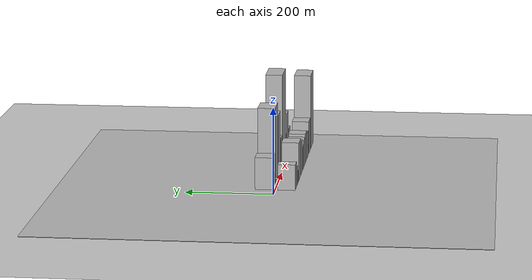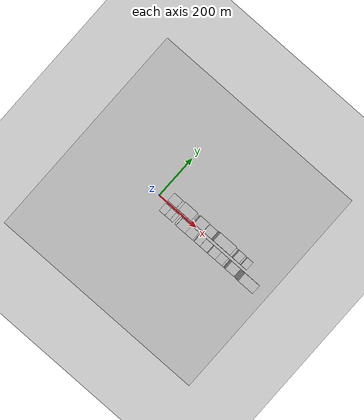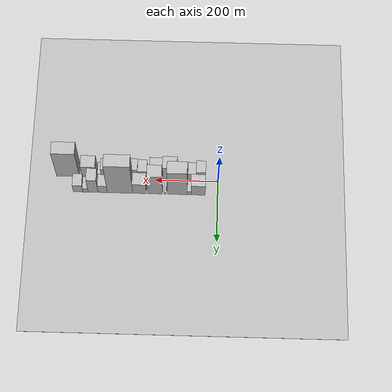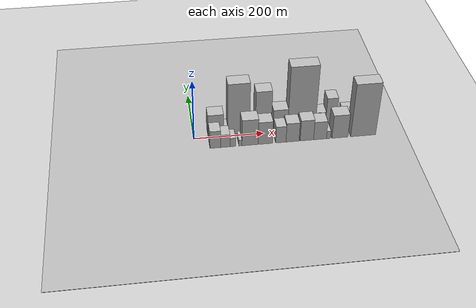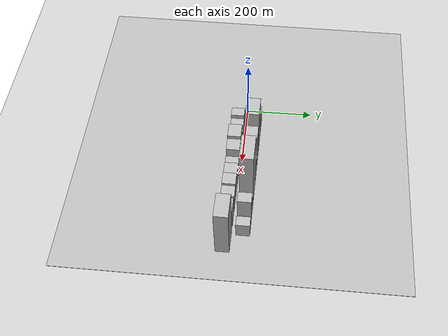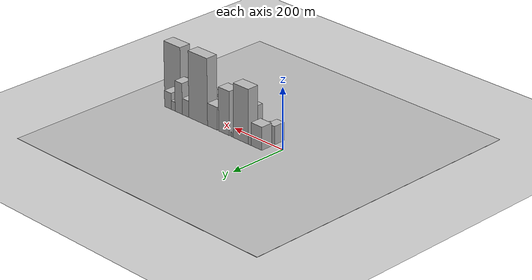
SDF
<?xml version="1.0" encoding="utf-8"?>

<sdf version="1.6">

   <world name="default">

      <gui fullscreen="0">

         <camera name="user_camera">

            <pose>-15 0 4.57585 0 0 0</pose>

            <view_controller>orbit</view_controller>

         </camera>

      </gui>

      <scene>

         <sky>

           <clouds>

             <speed>12</speed>

           </clouds>

         </sky>

         <ambient>0.4 0.4 0.4 1</ambient>

         <background>0.7 0.7 0.7 1</background>

         <shadows>1</shadows>

      </scene>

      <gravity>0 0 -9.8066</gravity>

      <magnetic_field>6e-06 2.3e-05 -4.2e-05</magnetic_field>

      <physics default="0" name="default_physics" type="ode">

         <ode>

            <solver>

               <type>quick</type>

               <iters>10</iters>

               <sor>1.0</sor>

               <use_dynamic_moi_rescaling>0</use_dynamic_moi_rescaling>

            </solver>

            <constraints>

               <cfm>0</cfm>

               <erp>0.2</erp>

               <contact_max_correcting_vel>100</contact_max_correcting_vel>

               <contact_surface_layer>0.001</contact_surface_layer>

            </constraints>

         </ode>

         <max_step_size>0.004</max_step_size>

         <real_time_factor>1</real_time_factor>

         <real_time_update_rate>250</real_time_update_rate>

      </physics>

      <light name="sun" type="directional">

         <cast_shadows>1</cast_shadows>

         <pose>0 0 10 0 0 0</pose>

         <diffuse>0.8 0.8 0.8 1</diffuse>

         <specular>0.2 0.2 0.2 1</specular>

         <attenuation>

            <range>1000</range>

            <constant>0.9</constant>

            <linear>0.01</linear>

            <quadratic>0.001</quadratic>

         </attenuation>

         <direction>-0.5 0.1 -0.9</direction>

      </light>

      <include>

         <name>ground_plane_1</name>

         <uri>model://HANNAS_ground_plane</uri>

         <pose>0 0 0  0 0 0</pose>

      </include>

      <include>

         <name>ground_plane_2</name>

         <uri>model://HANNAS_ground_plane</uri>

         <pose>100 0 0  0 0 0</pose>

      </include>

      <model name="building_1">

         <static>1</static>

         <pose frame="">62.4932 26.0000 0 0.000000 0.000000 1.570796</pose>

         <link name="link">

            <pose frame="">0 0 37.50 0 0 0</pose>

            <collision name="collision">

               <geometry>

                  <box>

                     <size>40.0000 44.9864 75.0000</size>

                  </box>

               </geometry>

               <max_contacts>10</max_contacts>

               <surface>

                  <contact>

                     <ode/>

                  </contact>

                  <bounce/>

                  <friction>

                     <torsional>

                        <ode/>

                     </torsional>

                     <ode/>

                  </friction>

               </surface>

            </collision>

            <visual name="visual">

               <cast_shadows>0</cast_shadows>

               <geometry>

                  <box>

                     <size>40.0000 44.9864 75.0000</size>

                  </box>

               </geometry>

               <material>

                  <script>

                     <uri>model://HANNAS_wall/materials/scripts</uri>

                     <uri>model://HANNAS_wall/materials/textures</uri>

                     <name>vrc/HANNAS_wall</name>

                  </script>

               </material>

            </visual>

            <self_collide>0</self_collide>

            <enable_wind>0</enable_wind>

            <kinematic>0</kinematic>

         </link>

      </model>

      <model name="building_2">

         <static>1</static>

         <pose frame="">90.9111 26.0000 0 0.000000 0.000000 1.570796</pose>

         <link name="link">

            <pose frame="">0 0 13.50 0 0 0</pose>

            <collision name="collision">

               <geometry>

                  <box>

                     <size>40.0000 11.8492 27.0000</size>

                  </box>

               </geometry>

               <max_contacts>10</max_contacts>

               <surface>

                  <contact>

                     <ode/>

                  </contact>

                  <bounce/>

                  <friction>

                     <torsional>

                        <ode/>

                     </torsional>

                     <ode/>

                  </friction>

               </surface>

            </collision>

            <visual name="visual">

               <cast_shadows>0</cast_shadows>

               <geometry>

                  <box>

                     <size>40.0000 11.8492 27.0000</size>

                  </box>

               </geometry>

               <material>

                  <script>

                     <uri>model://HANNAS_wall/materials/scripts</uri>

                     <uri>model://HANNAS_wall/materials/textures</uri>

                     <name>vrc/HANNAS_wall</name>

                  </script>

               </material>

            </visual>

            <self_collide>0</self_collide>

            <enable_wind>0</enable_wind>

            <kinematic>0</kinematic>

         </link>

      </model>

      <model name="building_3">

         <static>1</static>

         <pose frame="">127.9426 26.0000 0 0.000000 0.000000 1.570796</pose>

         <link name="link">

            <pose frame="">0 0 88.50 0 0 0</pose>

            <collision name="collision">

               <geometry>

                  <box>

                     <size>40.0000 62.2137 177.0000</size>

                  </box>

               </geometry>

               <max_contacts>10</max_contacts>

               <surface>

                  <contact>

                     <ode/>

                  </contact>

                  <bounce/>

                  <friction>

                     <torsional>

                        <ode/>

                     </torsional>

                     <ode/>

                  </friction>

               </surface>

            </collision>

            <visual name="visual">

               <cast_shadows>0</cast_shadows>

               <geometry>

                  <box>

                     <size>40.0000 62.2137 177.0000</size>

                  </box>

               </geometry>

               <material>

                  <script>

                     <uri>model://HANNAS_wall/materials/scripts</uri>

                     <uri>model://HANNAS_wall/materials/textures</uri>

                     <name>vrc/HANNAS_wall</name>

                  </script>

               </material>

            </visual>

            <self_collide>0</self_collide>

            <enable_wind>0</enable_wind>

            <kinematic>0</kinematic>

         </link>

      </model>

      <model name="building_4">

         <static>1</static>

         <pose frame="">166.2386 26.0000 0 0.000000 0.000000 1.570796</pose>

         <link name="link">

            <pose frame="">0 0 7.50 0 0 0</pose>

            <collision name="collision">

               <geometry>

                  <box>

                     <size>40.0000 6.3785 15.0000</size>

                  </box>

               </geometry>

               <max_contacts>10</max_contacts>

               <surface>

                  <contact>

                     <ode/>

                  </contact>

                  <bounce/>

                  <friction>

                     <torsional>

                        <ode/>

                     </torsional>

                     <ode/>

                  </friction>

               </surface>

            </collision>

            <visual name="visual">

               <cast_shadows>0</cast_shadows>

               <geometry>

                  <box>

                     <size>40.0000 6.3785 15.0000</size>

                  </box>

               </geometry>

               <material>

                  <script>

                     <uri>model://HANNAS_wall/materials/scripts</uri>

                     <uri>model://HANNAS_wall/materials/textures</uri>

                     <name>vrc/HANNAS_wall</name>

                  </script>

               </material>

            </visual>

            <self_collide>0</self_collide>

            <enable_wind>0</enable_wind>

            <kinematic>0</kinematic>

         </link>

      </model>

      <model name="building_5">

         <static>1</static>

         <pose frame="">198.3832 26.0000 0 0.000000 0.000000 1.570796</pose>

         <link name="link">

            <pose frame="">0 0 72.00 0 0 0</pose>

            <collision name="collision">

               <geometry>

                  <box>

                     <size>40.0000 45.9106 144.0000</size>

                  </box>

               </geometry>

               <max_contacts>10</max_contacts>

               <surface>

                  <contact>

                     <ode/>

                  </contact>

                  <bounce/>

                  <friction>

                     <torsional>

                        <ode/>

                     </torsional>

                     <ode/>

                  </friction>

               </surface>

            </collision>

            <visual name="visual">

               <cast_shadows>0</cast_shadows>

               <geometry>

                  <box>

                     <size>40.0000 45.9106 144.0000</size>

                  </box>

               </geometry>

               <material>

                  <script>

                     <uri>model://HANNAS_wall/materials/scripts</uri>

                     <uri>model://HANNAS_wall/materials/textures</uri>

                     <name>vrc/HANNAS_wall</name>

                  </script>

               </material>

            </visual>

            <self_collide>0</self_collide>

            <enable_wind>0</enable_wind>

            <kinematic>0</kinematic>

         </link>

      </model>

      <model name="building_6">

         <static>1</static>

         <pose frame="">247.6687 26.0000 0 0.000000 0.000000 1.570796</pose>

         <link name="link">

            <pose frame="">0 0 37.50 0 0 0</pose>

            <collision name="collision">

               <geometry>

                  <box>

                     <size>40.0000 42.6604 75.0000</size>

                  </box>

               </geometry>

               <max_contacts>10</max_contacts>

               <surface>

                  <contact>

                     <ode/>

                  </contact>

                  <bounce/>

                  <friction>

                     <torsional>

                        <ode/>

                     </torsional>

                     <ode/>

                  </friction>

               </surface>

            </collision>

            <visual name="visual">

               <cast_shadows>0</cast_shadows>

               <geometry>

                  <box>

                     <size>40.0000 42.6604 75.0000</size>

                  </box>

               </geometry>

               <material>

                  <script>

                     <uri>model://HANNAS_wall/materials/scripts</uri>

                     <uri>model://HANNAS_wall/materials/textures</uri>

                     <name>vrc/HANNAS_wall</name>

                  </script>

               </material>

            </visual>

            <self_collide>0</self_collide>

            <enable_wind>0</enable_wind>

            <kinematic>0</kinematic>

         </link>

      </model>

      <model name="building_7">

         <static>1</static>

         <pose frame="">309.2730 26.0000 0 0.000000 0.000000 1.570796</pose>

         <link name="link">

            <pose frame="">0 0 109.50 0 0 0</pose>

            <collision name="collision">

               <geometry>

                  <box>

                     <size>40.0000 80.5481 219.0000</size>

                  </box>

               </geometry>

               <max_contacts>10</max_contacts>

               <surface>

                  <contact>

                     <ode/>

                  </contact>

                  <bounce/>

                  <friction>

                     <torsional>

                        <ode/>

                     </torsional>

                     <ode/>

                  </friction>

               </surface>

            </collision>

            <visual name="visual">

               <cast_shadows>0</cast_shadows>

               <geometry>

                  <box>

                     <size>40.0000 80.5481 219.0000</size>

                  </box>

               </geometry>

               <material>

                  <script>

                     <uri>model://HANNAS_wall/materials/scripts</uri>

                     <uri>model://HANNAS_wall/materials/textures</uri>

                     <name>vrc/HANNAS_wall</name>

                  </script>

               </material>

            </visual>

            <self_collide>0</self_collide>

            <enable_wind>0</enable_wind>

            <kinematic>0</kinematic>

         </link>

      </model>

      <model name="building_8">

         <static>1</static>

         <pose frame="">364.0394 26.0000 0 0.000000 0.000000 1.570796</pose>

         <link name="link">

            <pose frame="">0 0 27.00 0 0 0</pose>

            <collision name="collision">

               <geometry>

                  <box>

                     <size>40.0000 28.9847 54.0000</size>

                  </box>

               </geometry>

               <max_contacts>10</max_contacts>

               <surface>

                  <contact>

                     <ode/>

                  </contact>

                  <bounce/>

                  <friction>

                     <torsional>

                        <ode/>

                     </torsional>

                     <ode/>

                  </friction>

               </surface>

            </collision>

            <visual name="visual">

               <cast_shadows>0</cast_shadows>

               <geometry>

                  <box>

                     <size>40.0000 28.9847 54.0000</size>

                  </box>

               </geometry>

               <material>

                  <script>

                     <uri>model://HANNAS_wall/materials/scripts</uri>

                     <uri>model://HANNAS_wall/materials/textures</uri>

                     <name>vrc/HANNAS_wall</name>

                  </script>

               </material>

            </visual>

            <self_collide>0</self_collide>

            <enable_wind>0</enable_wind>

            <kinematic>0</kinematic>

         </link>

      </model>

      <model name="building_9">

         <static>1</static>

         <pose frame="">394.4013 26.0000 0 0.000000 0.000000 1.570796</pose>

         <link name="link">

            <pose frame="">0 0 51.00 0 0 0</pose>

            <collision name="collision">

               <geometry>

                  <box>

                     <size>40.0000 31.7392 102.0000</size>

                  </box>

               </geometry>

               <max_contacts>10</max_contacts>

               <surface>

                  <contact>

                     <ode/>

                  </contact>

                  <bounce/>

                  <friction>

                     <torsional>

                        <ode/>

                     </torsional>

                     <ode/>

                  </friction>

               </surface>

            </collision>

            <visual name="visual">

               <cast_shadows>0</cast_shadows>

               <geometry>

                  <box>

                     <size>40.0000 31.7392 102.0000</size>

                  </box>

               </geometry>

               <material>

                  <script>

                     <uri>model://HANNAS_wall/materials/scripts</uri>

                     <uri>model://HANNAS_wall/materials/textures</uri>

                     <name>vrc/HANNAS_wall</name>

                  </script>

               </material>

            </visual>

            <self_collide>0</self_collide>

            <enable_wind>0</enable_wind>

            <kinematic>0</kinematic>

         </link>

      </model>

      <model name="building_10">

         <static>1</static>

         <pose frame="">418.6257 26.0000 0 0.000000 0.000000 1.570796</pose>

         <link name="link">

            <pose frame="">0 0 15.00 0 0 0</pose>

            <collision name="collision">

               <geometry>

                  <box>

                     <size>40.0000 16.7096 30.0000</size>

                  </box>

               </geometry>

               <max_contacts>10</max_contacts>

               <surface>

                  <contact>

                     <ode/>

                  </contact>

                  <bounce/>

                  <friction>

                     <torsional>

                        <ode/>

                     </torsional>

                     <ode/>

                  </friction>

               </surface>

            </collision>

            <visual name="visual">

               <cast_shadows>0</cast_shadows>

               <geometry>

                  <box>

                     <size>40.0000 16.7096 30.0000</size>

                  </box>

               </geometry>

               <material>

                  <script>

                     <uri>model://HANNAS_wall/materials/scripts</uri>

                     <uri>model://HANNAS_wall/materials/textures</uri>

                     <name>vrc/HANNAS_wall</name>

                  </script>

               </material>

            </visual>

            <self_collide>0</self_collide>

            <enable_wind>0</enable_wind>

            <kinematic>0</kinematic>

         </link>

      </model>

      <model name="building_11">

         <static>1</static>

         <pose frame="">441.9479 26.0000 0 0.000000 0.000000 1.570796</pose>

         <link name="link">

            <pose frame="">0 0 27.00 0 0 0</pose>

            <collision name="collision">

               <geometry>

                  <box>

                     <size>40.0000 29.9348 54.0000</size>

                  </box>

               </geometry>

               <max_contacts>10</max_contacts>

               <surface>

                  <contact>

                     <ode/>

                  </contact>

                  <bounce/>

                  <friction>

                     <torsional>

                        <ode/>

                     </torsional>

                     <ode/>

                  </friction>

               </surface>

            </collision>

            <visual name="visual">

               <cast_shadows>0</cast_shadows>

               <geometry>

                  <box>

                     <size>40.0000 29.9348 54.0000</size>

                  </box>

               </geometry>

               <material>

                  <script>

                     <uri>model://HANNAS_wall/materials/scripts</uri>

                     <uri>model://HANNAS_wall/materials/textures</uri>

                     <name>vrc/HANNAS_wall</name>

                  </script>

               </material>

            </visual>

            <self_collide>0</self_collide>

            <enable_wind>0</enable_wind>

            <kinematic>0</kinematic>

         </link>

      </model>

      <model name="building_12">

         <static>1</static>

         <pose frame="">55.1444 -26.0000 0 0.000000 0.000000 1.570796</pose>

         <link name="link">

            <pose frame="">0 0 30.00 0 0 0</pose>

            <collision name="collision">

               <geometry>

                  <box>

                     <size>40.0000 30.2888 60.0000</size>

                  </box>

               </geometry>

               <max_contacts>10</max_contacts>

               <surface>

                  <contact>

                     <ode/>

                  </contact>

                  <bounce/>

                  <friction>

                     <torsional>

                        <ode/>

                     </torsional>

                     <ode/>

                  </friction>

               </surface>

            </collision>

            <visual name="visual">

               <cast_shadows>0</cast_shadows>

               <geometry>

                  <box>

                     <size>40.0000 30.2888 60.0000</size>

                  </box>

               </geometry>

               <material>

                  <script>

                     <uri>model://HANNAS_wall/materials/scripts</uri>

                     <uri>model://HANNAS_wall/materials/textures</uri>

                     <name>vrc/HANNAS_wall</name>

                  </script>

               </material>

            </visual>

            <self_collide>0</self_collide>

            <enable_wind>0</enable_wind>

            <kinematic>0</kinematic>

         </link>

      </model>

      <model name="building_13">

         <static>1</static>

         <pose frame="">83.2810 -26.0000 0 0.000000 0.000000 1.570796</pose>

         <link name="link">

            <pose frame="">0 0 22.50 0 0 0</pose>

            <collision name="collision">

               <geometry>

                  <box>

                     <size>40.0000 25.9846 45.0000</size>

                  </box>

               </geometry>

               <max_contacts>10</max_contacts>

               <surface>

                  <contact>

                     <ode/>

                  </contact>

                  <bounce/>

                  <friction>

                     <torsional>

                        <ode/>

                     </torsional>

                     <ode/>

                  </friction>

               </surface>

            </collision>

            <visual name="visual">

               <cast_shadows>0</cast_shadows>

               <geometry>

                  <box>

                     <size>40.0000 25.9846 45.0000</size>

                  </box>

               </geometry>

               <material>

                  <script>

                     <uri>model://HANNAS_wall/materials/scripts</uri>

                     <uri>model://HANNAS_wall/materials/textures</uri>

                     <name>vrc/HANNAS_wall</name>

                  </script>

               </material>

            </visual>

            <self_collide>0</self_collide>

            <enable_wind>0</enable_wind>

            <kinematic>0</kinematic>

         </link>

      </model>

      <model name="building_14">

         <static>1</static>

         <pose frame="">104.2739 -26.0000 0 0.000000 0.000000 1.570796</pose>

         <link name="link">

            <pose frame="">0 0 15.00 0 0 0</pose>

            <collision name="collision">

               <geometry>

                  <box>

                     <size>40.0000 16.0011 30.0000</size>

                  </box>

               </geometry>

               <max_contacts>10</max_contacts>

               <surface>

                  <contact>

                     <ode/>

                  </contact>

                  <bounce/>

                  <friction>

                     <torsional>

                        <ode/>

                     </torsional>

                     <ode/>

                  </friction>

               </surface>

            </collision>

            <visual name="visual">

               <cast_shadows>0</cast_shadows>

               <geometry>

                  <box>

                     <size>40.0000 16.0011 30.0000</size>

                  </box>

               </geometry>

               <material>

                  <script>

                     <uri>model://HANNAS_wall/materials/scripts</uri>

                     <uri>model://HANNAS_wall/materials/textures</uri>

                     <name>vrc/HANNAS_wall</name>

                  </script>

               </material>

            </visual>

            <self_collide>0</self_collide>

            <enable_wind>0</enable_wind>

            <kinematic>0</kinematic>

         </link>

      </model>

      <model name="building_15">

         <static>1</static>

         <pose frame="">125.4945 -26.0000 0 0.000000 0.000000 1.570796</pose>

         <link name="link">

            <pose frame="">0 0 10.50 0 0 0</pose>

            <collision name="collision">

               <geometry>

                  <box>

                     <size>40.0000 8.4401 21.0000</size>

                  </box>

               </geometry>

               <max_contacts>10</max_contacts>

               <surface>

                  <contact>

                     <ode/>

                  </contact>

                  <bounce/>

                  <friction>

                     <torsional>

                        <ode/>

                     </torsional>

                     <ode/>

                  </friction>

               </surface>

            </collision>

            <visual name="visual">

               <cast_shadows>0</cast_shadows>

               <geometry>

                  <box>

                     <size>40.0000 8.4401 21.0000</size>

                  </box>

               </geometry>

               <material>

                  <script>

                     <uri>model://HANNAS_wall/materials/scripts</uri>

                     <uri>model://HANNAS_wall/materials/textures</uri>

                     <name>vrc/HANNAS_wall</name>

                  </script>

               </material>

            </visual>

            <self_collide>0</self_collide>

            <enable_wind>0</enable_wind>

            <kinematic>0</kinematic>

         </link>

      </model>

      <model name="building_16">

         <static>1</static>

         <pose frame="">152.8273 -26.0000 0 0.000000 0.000000 1.570796</pose>

         <link name="link">

            <pose frame="">0 0 45.00 0 0 0</pose>

            <collision name="collision">

               <geometry>

                  <box>

                     <size>40.0000 46.2256 90.0000</size>

                  </box>

               </geometry>

               <max_contacts>10</max_contacts>

               <surface>

                  <contact>

                     <ode/>

                  </contact>

                  <bounce/>

                  <friction>

                     <torsional>

                        <ode/>

                     </torsional>

                     <ode/>

                  </friction>

               </surface>

            </collision>

            <visual name="visual">

               <cast_shadows>0</cast_shadows>

               <geometry>

                  <box>

                     <size>40.0000 46.2256 90.0000</size>

                  </box>

               </geometry>

               <material>

                  <script>

                     <uri>model://HANNAS_wall/materials/scripts</uri>

                     <uri>model://HANNAS_wall/materials/textures</uri>

                     <name>vrc/HANNAS_wall</name>

                  </script>

               </material>

            </visual>

            <self_collide>0</self_collide>

            <enable_wind>0</enable_wind>

            <kinematic>0</kinematic>

         </link>

      </model>

      <model name="building_17">

         <static>1</static>

         <pose frame="">196.2316 -26.0000 0 0.000000 0.000000 1.570796</pose>

         <link name="link">

            <pose frame="">0 0 39.00 0 0 0</pose>

            <collision name="collision">

               <geometry>

                  <box>

                     <size>40.0000 40.5830 78.0000</size>

                  </box>

               </geometry>

               <max_contacts>10</max_contacts>

               <surface>

                  <contact>

                     <ode/>

                  </contact>

                  <bounce/>

                  <friction>

                     <torsional>

                        <ode/>

                     </torsional>

                     <ode/>

                  </friction>

               </surface>

            </collision>

            <visual name="visual">

               <cast_shadows>0</cast_shadows>

               <geometry>

                  <box>

                     <size>40.0000 40.5830 78.0000</size>

                  </box>

               </geometry>

               <material>

                  <script>

                     <uri>model://HANNAS_wall/materials/scripts</uri>

                     <uri>model://HANNAS_wall/materials/textures</uri>

                     <name>vrc/HANNAS_wall</name>

                  </script>

               </material>

            </visual>

            <self_collide>0</self_collide>

            <enable_wind>0</enable_wind>

            <kinematic>0</kinematic>

         </link>

      </model>

      <model name="building_18">

         <static>1</static>

         <pose frame="">240.1695 -26.0000 0 0.000000 0.000000 1.570796</pose>

         <link name="link">

            <pose frame="">0 0 28.50 0 0 0</pose>

            <collision name="collision">

               <geometry>

                  <box>

                     <size>40.0000 29.2928 57.0000</size>

                  </box>

               </geometry>

               <max_contacts>10</max_contacts>

               <surface>

                  <contact>

                     <ode/>

                  </contact>

                  <bounce/>

                  <friction>

                     <torsional>

                        <ode/>

                     </torsional>

                     <ode/>

                  </friction>

               </surface>

            </collision>

            <visual name="visual">

               <cast_shadows>0</cast_shadows>

               <geometry>

                  <box>

                     <size>40.0000 29.2928 57.0000</size>

                  </box>

               </geometry>

               <material>

                  <script>

                     <uri>model://HANNAS_wall/materials/scripts</uri>

                     <uri>model://HANNAS_wall/materials/textures</uri>

                     <name>vrc/HANNAS_wall</name>

                  </script>

               </material>

            </visual>

            <self_collide>0</self_collide>

            <enable_wind>0</enable_wind>

            <kinematic>0</kinematic>

         </link>

      </model>

      <model name="building_19">

         <static>1</static>

         <pose frame="">273.5339 -26.0000 0 0.000000 0.000000 1.570796</pose>

         <link name="link">

            <pose frame="">0 0 33.00 0 0 0</pose>

            <collision name="collision">

               <geometry>

                  <box>

                     <size>40.0000 37.4360 66.0000</size>

                  </box>

               </geometry>

               <max_contacts>10</max_contacts>

               <surface>

                  <contact>

                     <ode/>

                  </contact>

                  <bounce/>

                  <friction>

                     <torsional>

                        <ode/>

                     </torsional>

                     <ode/>

                  </friction>

               </surface>

            </collision>

            <visual name="visual">

               <cast_shadows>0</cast_shadows>

               <geometry>

                  <box>

                     <size>40.0000 37.4360 66.0000</size>

                  </box>

               </geometry>

               <material>

                  <script>

                     <uri>model://HANNAS_wall/materials/scripts</uri>

                     <uri>model://HANNAS_wall/materials/textures</uri>

                     <name>vrc/HANNAS_wall</name>

                  </script>

               </material>

            </visual>

            <self_collide>0</self_collide>

            <enable_wind>0</enable_wind>

            <kinematic>0</kinematic>

         </link>

      </model>

      <model name="building_20">

         <static>1</static>

         <pose frame="">314.4826 -26.0000 0 0.000000 0.000000 1.570796</pose>

         <link name="link">

            <pose frame="">0 0 36.00 0 0 0</pose>

            <collision name="collision">

               <geometry>

                  <box>

                     <size>40.0000 38.4614 72.0000</size>

                  </box>

               </geometry>

               <max_contacts>10</max_contacts>

               <surface>

                  <contact>

                     <ode/>

                  </contact>

                  <bounce/>

                  <friction>

                     <torsional>

                        <ode/>

                     </torsional>

                     <ode/>

                  </friction>

               </surface>

            </collision>

            <visual name="visual">

               <cast_shadows>0</cast_shadows>

               <geometry>

                  <box>

                     <size>40.0000 38.4614 72.0000</size>

                  </box>

               </geometry>

               <material>

                  <script>

                     <uri>model://HANNAS_wall/materials/scripts</uri>

                     <uri>model://HANNAS_wall/materials/textures</uri>

                     <name>vrc/HANNAS_wall</name>

                  </script>

               </material>

            </visual>

            <self_collide>0</self_collide>

            <enable_wind>0</enable_wind>

            <kinematic>0</kinematic>

         </link>

      </model>

      <model name="building_21">

         <static>1</static>

         <pose frame="">352.2893 -26.0000 0 0.000000 0.000000 1.570796</pose>

         <link name="link">

            <pose frame="">0 0 31.50 0 0 0</pose>

            <collision name="collision">

               <geometry>

                  <box>

                     <size>40.0000 37.1519 63.0000</size>

                  </box>

               </geometry>

               <max_contacts>10</max_contacts>

               <surface>

                  <contact>

                     <ode/>

                  </contact>

                  <bounce/>

                  <friction>

                     <torsional>

                        <ode/>

                     </torsional>

                     <ode/>

                  </friction>

               </surface>

            </collision>

            <visual name="visual">

               <cast_shadows>0</cast_shadows>

               <geometry>

                  <box>

                     <size>40.0000 37.1519 63.0000</size>

                  </box>

               </geometry>

               <material>

                  <script>

                     <uri>model://HANNAS_wall/materials/scripts</uri>

                     <uri>model://HANNAS_wall/materials/textures</uri>

                     <name>vrc/HANNAS_wall</name>

                  </script>

               </material>

            </visual>

            <self_collide>0</self_collide>

            <enable_wind>0</enable_wind>

            <kinematic>0</kinematic>

         </link>

      </model>

      <model name="building_22">

         <static>1</static>

         <pose frame="">376.8131 -26.0000 0 0.000000 0.000000 1.570796</pose>

         <link name="link">

            <pose frame="">0 0 13.50 0 0 0</pose>

            <collision name="collision">

               <geometry>

                  <box>

                     <size>40.0000 11.8957 27.0000</size>

                  </box>

               </geometry>

               <max_contacts>10</max_contacts>

               <surface>

                  <contact>

                     <ode/>

                  </contact>

                  <bounce/>

                  <friction>

                     <torsional>

                        <ode/>

                     </torsional>

                     <ode/>

                  </friction>

               </surface>

            </collision>

            <visual name="visual">

               <cast_shadows>0</cast_shadows>

               <geometry>

                  <box>

                     <size>40.0000 11.8957 27.0000</size>

                  </box>

               </geometry>

               <material>

                  <script>

                     <uri>model://HANNAS_wall/materials/scripts</uri>

                     <uri>model://HANNAS_wall/materials/textures</uri>

                     <name>vrc/HANNAS_wall</name>

                  </script>

               </material>

            </visual>

            <self_collide>0</self_collide>

            <enable_wind>0</enable_wind>

            <kinematic>0</kinematic>

         </link>

      </model>

      <model name="building_23">

         <static>1</static>

         <pose frame="">409.8692 -26.0000 0 0.000000 0.000000 1.570796</pose>

         <link name="link">

            <pose frame="">0 0 40.50 0 0 0</pose>

            <collision name="collision">

               <geometry>

                  <box>

                     <size>40.0000 46.2166 81.0000</size>

                  </box>

               </geometry>

               <max_contacts>10</max_contacts>

               <surface>

                  <contact>

                     <ode/>

                  </contact>

                  <bounce/>

                  <friction>

                     <torsional>

                        <ode/>

                     </torsional>

                     <ode/>

                  </friction>

               </surface>

            </collision>

            <visual name="visual">

               <cast_shadows>0</cast_shadows>

               <geometry>

                  <box>

                     <size>40.0000 46.2166 81.0000</size>

                  </box>

               </geometry>

               <material>

                  <script>

                     <uri>model://HANNAS_wall/materials/scripts</uri>

                     <uri>model://HANNAS_wall/materials/textures</uri>

                     <name>vrc/HANNAS_wall</name>

                  </script>

               </material>

            </visual>

            <self_collide>0</self_collide>

            <enable_wind>0</enable_wind>

            <kinematic>0</kinematic>

         </link>

      </model>

      <model name="building_24">

         <static>1</static>

         <pose frame="">477.1996 -26.0000 0 0.000000 0.000000 1.570796</pose>

         <link name="link">

            <pose frame="">0 0 91.50 0 0 0</pose>

            <collision name="collision">

               <geometry>

                  <box>

                     <size>40.0000 72.4443 183.0000</size>

                  </box>

               </geometry>

               <max_contacts>10</max_contacts>

               <surface>

                  <contact>

                     <ode/>

                  </contact>

                  <bounce/>

                  <friction>

                     <torsional>

                        <ode/>

                     </torsional>

                     <ode/>

                  </friction>

               </surface>

            </collision>

            <visual name="visual">

               <cast_shadows>0</cast_shadows>

               <geometry>

                  <box>

                     <size>40.0000 72.4443 183.0000</size>

                  </box>

               </geometry>

               <material>

                  <script>

                     <uri>model://HANNAS_wall/materials/scripts</uri>

                     <uri>model://HANNAS_wall/materials/textures</uri>

                     <name>vrc/HANNAS_wall</name>

                  </script>

               </material>

            </visual>

            <self_collide>0</self_collide>

            <enable_wind>0</enable_wind>

            <kinematic>0</kinematic>

         </link>

      </model>

   </world>

</sdf>

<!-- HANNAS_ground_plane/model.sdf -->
<sdf version="1.4">
<model name="HANNAS_ground_plane">
  <static>true</static>
    <link name="link">
      <collision name="collision">
        <geometry>
          <plane>
            <normal>0 0 1</normal>
            <size>1000 1000</size>
          </plane>
        </geometry>
        <surface>
          <friction>
            <ode>
              <mu>100</mu>
              <mu2>50</mu2>
            </ode>
          </friction>
        </surface>
      </collision>
      <visual name="visual">
        <cast_shadows>false</cast_shadows>
        <geometry>
          <plane>
            <normal>0 0 1</normal>
            <size>1000 1000</size>
          </plane>
        </geometry>
        <material>
          <script>
            <uri>model://HANNAS_ground_plane/materials/scripts/HANNAS_ground_plane.material</uri>
	    <uri>model://HANNAS_ground_plane/materials/textures</uri>
            <name>HANNASGroundPlane/Image</name>
          </script>
        </material>
      </visual>
    </link>
  </model>
</sdf>
